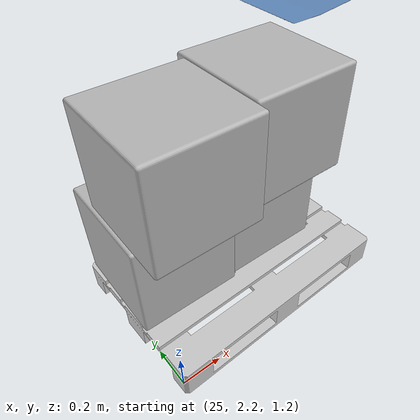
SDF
<sdf version="1.7">
 <world name="default">
  <light name="sun" type="directional">
   <pose>0 0 10 0 -0 0</pose>
   <diffuse>0.8 0.8 0.8 1</diffuse>
   <specular>0.2 0.2 0.2 1</specular>
   <attenuation>
    <range>1000</range>
    <constant>0.9</constant>
    <linear>0.01</linear>
    <quadratic>0.001</quadratic>
   </attenuation>
   <direction>-0.5 0.1 -0.9</direction>
   <spot><inner_angle>0</inner_angle><outer_angle>0</outer_angle><falloff>0</falloff></spot>
  </light>
  <model name="ground_plane">
   <static>1</static>
   <link name="link">
    <collision name="collision">
     <geometry><plane><normal>0 0 1</normal><size>100 100</size></plane></geometry>
     <surface>
      <contact><collide_bitmask>65535</collide_bitmask></contact>
      <friction><ode><mu>100</mu><mu2>50</mu2></ode></friction>
     </surface>
    </collision>
    <visual name="visual">
     <cast_shadows>0</cast_shadows>
     <geometry><plane><normal>0 0 1</normal><size>100 100</size></plane></geometry>
     <material>
      <script><uri>file://media/materials/scripts/gazebo.material</uri><name>Gazebo/Grey</name></script>
     </material>
    </visual>
   </link>
  </model>
  <gravity>0 0 -9.8</gravity>
  <magnetic_field>6e-06 2.3e-05 -4.2e-05</magnetic_field>
  <atmosphere type="adiabatic"/>
  <physics type="ode">
   <max_step_size>0.001</max_step_size>
   <real_time_factor>1</real_time_factor>
   <real_time_update_rate>1000</real_time_update_rate>
  </physics>
  <scene><ambient>0.4 0.4 0.4 1</ambient><background>0.7 0.7 0.7 1</background><shadows>1</shadows></scene>
  <spherical_coordinates>
   <surface_model>EARTH_WGS84</surface_model>
   <latitude_deg>0</latitude_deg>
   <longitude_deg>0</longitude_deg>
   <elevation>0</elevation>
   <heading_deg>0</heading_deg>
  </spherical_coordinates>
  <model name="warehouse">
   <static>1</static>
   <link name="link">
    <collision name="collision">
     <geometry><mesh><uri>model://warehouse_02/meshes/warehouse_sim_9.dae</uri></mesh></geometry>
    </collision>
    <visual name="visual">
     <geometry><mesh><uri>model://warehouse_02/meshes/warehouse_sim_9.dae</uri></mesh></geometry>
    </visual>
   </link>
   <pose>31.4 5.75779 0 0 -0 0</pose>
  </model>
  <light name="user_spot_light_0" type="spot">
   <pose>-76.1075 596.586 1 0 -0 0</pose>
   <diffuse>0.5 0.5 0.5 1</diffuse>
   <specular>0.1 0.1 0.1 1</specular>
   <direction>0 0 -1</direction>
   <attenuation>
    <range>20</range>
    <constant>0.5</constant>
    <linear>0.01</linear>
    <quadratic>0.001</quadratic>
   </attenuation>
   <cast_shadows>0</cast_shadows>
   <spot><inner_angle>0.6</inner_angle><outer_angle>1</outer_angle><falloff>1</falloff></spot>
  </light>
  <model name="euro_pallet">
   <link name="link">
    <pose>0 0 0.05 0 -0 0</pose>
    <inertial>
     <mass>20</mass>
     <inertia><ixx>2.43</ixx><ixy>0</ixy><ixz>0</ixz><iyy>1.1</iyy><iyz>0</iyz><izz>3.47</izz></inertia>
    </inertial>
    <collision name="collision">
     <pose>0 0 0.05 0 -0 0</pose>
     <geometry><mesh><uri>model://euro_pallet/meshes/pallet.dae</uri><scale>0.1 0.1 0.1</scale></mesh></geometry>
    </collision>
    <visual name="visual">
     <pose>0 0 0.05 0 -0 0</pose>
     <geometry><mesh><uri>model://euro_pallet/meshes/pallet.dae</uri><scale>0.1 0.1 0.1</scale></mesh></geometry>
    </visual>
   </link>
   <pose>25.5501 2.52919 1.29987 -4e-06 0 -1.5361</pose>
  </model>
  <model name="500x500x500_box">
   <link name="link">
    <collision name="collision">
     <geometry>
      <mesh><scale>1 1 1</scale><uri>model://500x500x500_box/meshes/500x500x500_box_v2.dae</uri></mesh>
     </geometry>
    </collision>
    <visual name="visual">
     <geometry>
      <mesh><scale>1 1 1</scale><uri>model://500x500x500_box/meshes/500x500x500_box_v2.dae</uri></mesh>
     </geometry>
    </visual>
    <inertial>
     <inertia><ixx>1</ixx><ixy>0</ixy><ixz>0</ixz><iyy>1</iyy><iyz>0</iyz><izz>1</izz></inertia>
     <mass>1</mass>
    </inertial>
   </link>
   <pose>25.2037 2.64252 1.67219 0.001208 -6.1e-05 4e-05</pose>
  </model>
  <model name="500x500x500_box_clone">
   <link name="link">
    <collision name="collision">
     <geometry>
      <mesh><scale>1 1 1</scale><uri>model://500x500x500_box/meshes/500x500x500_box_v2.dae</uri></mesh>
     </geometry>
    </collision>
    <visual name="visual">
     <geometry>
      <mesh><scale>1 1 1</scale><uri>model://500x500x500_box/meshes/500x500x500_box_v2.dae</uri></mesh>
     </geometry>
    </visual>
    <inertial>
     <inertia><ixx>1</ixx><ixy>0</ixy><ixz>0</ixz><iyy>1</iyy><iyz>0</iyz><izz>1</izz></inertia>
     <mass>1</mass>
    </inertial>
   </link>
   <pose>25.7078 2.66343 1.67214 0.000821 2.3e-05 -0.000293</pose>
  </model>
  <model name="500x500x500_box_clone_clone">
   <link name="link">
    <collision name="collision">
     <geometry>
      <mesh><scale>1 1 1</scale><uri>model://500x500x500_box/meshes/500x500x500_box_v2.dae</uri></mesh>
     </geometry>
    </collision>
    <visual name="visual">
     <geometry>
      <mesh><scale>1 1 1</scale><uri>model://500x500x500_box/meshes/500x500x500_box_v2.dae</uri></mesh>
     </geometry>
    </visual>
    <inertial>
     <inertia><ixx>1</ixx><ixy>0</ixy><ixz>0</ixz><iyy>1</iyy><iyz>0</iyz><izz>1</izz></inertia>
     <mass>1</mass>
    </inertial>
   </link>
   <pose>25.7192 2.54333 2.17204 0.000821 2.5e-05 -0.000706</pose>
  </model>
  <model name="500x500x500_box_clone_clone_clone">
   <link name="link">
    <collision name="collision">
     <geometry>
      <mesh><scale>1 1 1</scale><uri>model://500x500x500_box/meshes/500x500x500_box_v2.dae</uri></mesh>
     </geometry>
    </collision>
    <visual name="visual">
     <geometry>
      <mesh><scale>1 1 1</scale><uri>model://500x500x500_box/meshes/500x500x500_box_v2.dae</uri></mesh>
     </geometry>
    </visual>
    <inertial>
     <inertia><ixx>1</ixx><ixy>0</ixy><ixz>0</ixz><iyy>1</iyy><iyz>0</iyz><izz>1</izz></inertia>
     <mass>1</mass>
    </inertial>
   </link>
   <pose>25.2185 2.48263 2.17201 0.001209 -6.2e-05 0.000119</pose>
  </model>
 </world>
</sdf>
